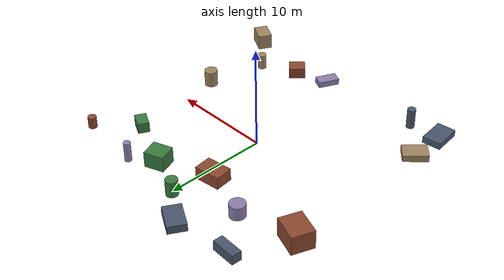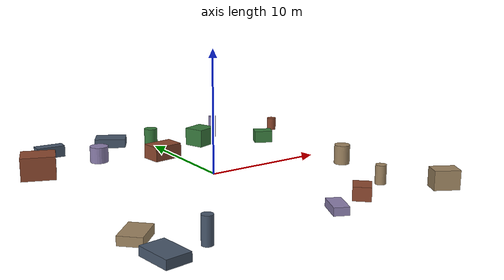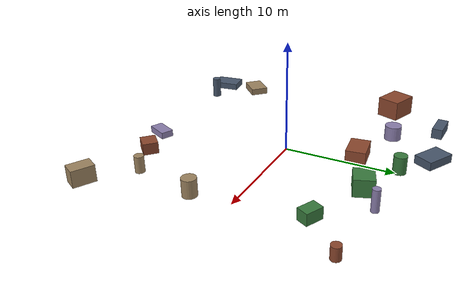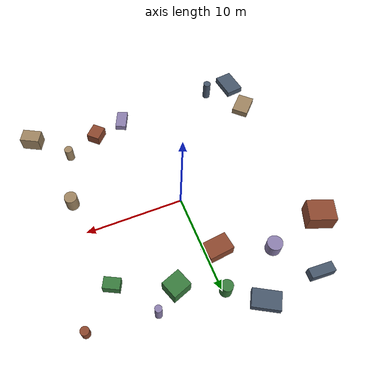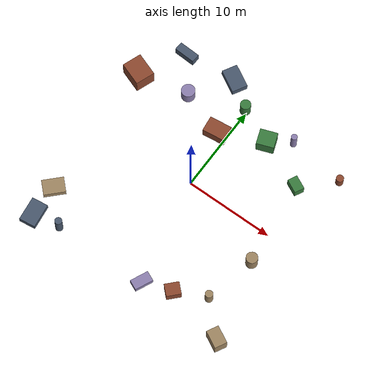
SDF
<sdf version="1.10">
 <world name="robotx_task1_uav_view">
  <gravity>0 0 -9.81</gravity>
  <physics name="physics" type="ode">
   <max_step_size>0.002</max_step_size>
   <real_time_factor>1.0</real_time_factor>
  </physics>
  <scene>
   <ambient>0.20 0.20 0.20 1.0</ambient>
   <background>0.58 0.70 0.88 1.0</background>
   <shadows>true</shadows>
   <grid>false</grid>
  </scene>
  <light name="sun" type="directional">
   <pose>0 0 300 0 0 0</pose>
   <diffuse>0.78 0.78 0.78 1.0</diffuse>
   <specular>0.45 0.45 0.45 1.0</specular>
   <direction>0.20 -0.08 -1.0</direction>
   <attenuation>
    <range>2500</range>
    <constant>0.85</constant>
    <linear>0.001</linear>
    <quadratic>0.00005</quadratic>
   </attenuation>
  </light>
  <plugin filename="gz-sim-physics-system" name="gz::sim::systems::Physics"/>
  <plugin filename="gz-sim-user-commands-system" name="gz::sim::systems::UserCommands"/>
  <plugin filename="gz-sim-scene-broadcaster-system" name="gz::sim::systems::SceneBroadcaster"/>
  <plugin filename="gz-sim-sensors-system" name="gz::sim::systems::Sensors">
   <render_engine>ogre2</render_engine>
  </plugin>
  <model name="scene_clutter_box_000">
   <static>true</static>
   <pose>12.482 -12.603 0.780 0 0 -0.487610</pose>
   <link name="link">
    <visual name="v">
     <geometry><box><size>2.008 1.378 1.520</size></box></geometry>
     <material><ambient>0.45 0.38 0.32 1.0</ambient><diffuse>0.62 0.52 0.38 1.0</diffuse></material>
    </visual>
   </link>
  </model>
  <model name="scene_clutter_cyl_001">
   <static>true</static>
   <pose>-8.130 -12.249 1.049 0 0 1.329869</pose>
   <link name="link">
    <visual name="v">
     <geometry><cylinder><radius>0.402</radius><length>1.998</length></cylinder></geometry>
     <material><ambient>0.18 0.22 0.28 1.0</ambient><diffuse>0.28 0.34 0.42 1.0</diffuse></material>
    </visual>
   </link>
  </model>
  <model name="scene_clutter_box_002">
   <static>true</static>
   <pose>5.712 -10.963 0.553 0 0 0.814916</pose>
   <link name="link">
    <visual name="v">
     <geometry><box><size>1.611 1.381 1.065</size></box></geometry>
     <material><ambient>0.35 0.16 0.12 1.0</ambient><diffuse>0.55 0.28 0.18 1.0</diffuse></material>
    </visual>
   </link>
  </model>
  <model name="scene_clutter_cyl_003">
   <static>true</static>
   <pose>-0.276 10.292 0.857 0 0 -2.375255</pose>
   <link name="link">
    <visual name="v">
     <geometry><cylinder><radius>0.583</radius><length>1.614</length></cylinder></geometry>
     <material><ambient>0.12 0.30 0.14 1.0</ambient><diffuse>0.22 0.48 0.24 1.0</diffuse></material>
    </visual>
   </link>
  </model>
  <model name="scene_clutter_cyl_004">
   <static>true</static>
   <pose>6.171 10.119 1.038 0 0 -0.441008</pose>
   <link name="link">
    <visual name="v">
     <geometry><cylinder><radius>0.341</radius><length>1.976</length></cylinder></geometry>
     <material><ambient>0.40 0.35 0.50 1.0</ambient><diffuse>0.55 0.50 0.68 1.0</diffuse></material>
    </visual>
   </link>
  </model>
  <model name="scene_clutter_cyl_005">
   <static>true</static>
   <pose>10.412 -3.511 0.852 0 0 -0.757051</pose>
   <link name="link">
    <visual name="v">
     <geometry><cylinder><radius>0.642</radius><length>1.604</length></cylinder></geometry>
     <material><ambient>0.45 0.38 0.32 1.0</ambient><diffuse>0.62 0.52 0.38 1.0</diffuse></material>
    </visual>
   </link>
  </model>
  <model name="scene_clutter_box_006">
   <static>true</static>
   <pose>-11.228 -12.624 0.349 0 0 -1.440854</pose>
   <link name="link">
    <visual name="v">
     <geometry><box><size>2.731 1.845 0.658</size></box></geometry>
     <material><ambient>0.18 0.22 0.28 1.0</ambient><diffuse>0.28 0.34 0.42 1.0</diffuse></material>
    </visual>
   </link>
  </model>
  <model name="scene_clutter_cyl_007">
   <static>true</static>
   <pose>12.624 9.392 0.619 0 0 -0.344948</pose>
   <link name="link">
    <visual name="v">
     <geometry><cylinder><radius>0.416</radius><length>1.137</length></cylinder></geometry>
     <material><ambient>0.35 0.16 0.12 1.0</ambient><diffuse>0.55 0.28 0.18 1.0</diffuse></material>
    </visual>
   </link>
  </model>
  <model name="scene_clutter_box_008">
   <static>true</static>
   <pose>3.836 8.453 0.802 0 0 0.348647</pose>
   <link name="link">
    <visual name="v">
     <geometry><box><size>1.957 1.783 1.564</size></box></geometry>
     <material><ambient>0.12 0.30 0.14 1.0</ambient><diffuse>0.22 0.48 0.24 1.0</diffuse></material>
    </visual>
   </link>
  </model>
  <model name="scene_clutter_cyl_009">
   <static>true</static>
   <pose>-6.274 8.099 0.723 0 0 2.740725</pose>
   <link name="link">
    <visual name="v">
     <geometry><cylinder><radius>0.762</radius><length>1.345</length></cylinder></geometry>
     <material><ambient>0.40 0.35 0.50 1.0</ambient><diffuse>0.55 0.50 0.68 1.0</diffuse></material>
    </visual>
   </link>
  </model>
  <model name="scene_clutter_cyl_010">
   <static>true</static>
   <pose>9.148 -9.326 0.811 0 0 -2.560060</pose>
   <link name="link">
    <visual name="v">
     <geometry><cylinder><radius>0.427</radius><length>1.523</length></cylinder></geometry>
     <material><ambient>0.45 0.38 0.32 1.0</ambient><diffuse>0.62 0.52 0.38 1.0</diffuse></material>
    </visual>
   </link>
  </model>
  <model name="scene_clutter_box_011">
   <static>true</static>
   <pose>-9.221 11.891 0.499 0 0 -1.622120</pose>
   <link name="link">
    <visual name="v">
     <geometry><box><size>0.974 2.417 0.959</size></box></geometry>
     <material><ambient>0.18 0.22 0.28 1.0</ambient><diffuse>0.28 0.34 0.42 1.0</diffuse></material>
    </visual>
   </link>
  </model>
  <model name="scene_clutter_box_012">
   <static>true</static>
   <pose>-11.958 6.798 0.953 0 0 -0.350087</pose>
   <link name="link">
    <visual name="v">
     <geometry><box><size>2.698 2.205 1.865</size></box></geometry>
     <material><ambient>0.35 0.16 0.12 1.0</ambient><diffuse>0.55 0.28 0.18 1.0</diffuse></material>
    </visual>
   </link>
  </model>
  <model name="scene_clutter_box_013">
   <static>true</static>
   <pose>9.225 6.148 0.550 0 0 -0.461757</pose>
   <link name="link">
    <visual name="v">
     <geometry><box><size>1.606 1.116 1.060</size></box></geometry>
     <material><ambient>0.12 0.30 0.14 1.0</ambient><diffuse>0.22 0.48 0.24 1.0</diffuse></material>
    </visual>
   </link>
  </model>
  <model name="scene_clutter_box_014">
   <static>true</static>
   <pose>2.460 -11.993 0.325 0 0 2.718652</pose>
   <link name="link">
    <visual name="v">
     <geometry><box><size>1.149 2.079 0.610</size></box></geometry>
     <material><ambient>0.40 0.35 0.50 1.0</ambient><diffuse>0.55 0.50 0.68 1.0</diffuse></material>
    </visual>
   </link>
  </model>
  <model name="scene_clutter_box_015">
   <static>true</static>
   <pose>-11.345 -9.026 0.352 0 0 -2.342275</pose>
   <link name="link">
    <visual name="v">
     <geometry><box><size>2.416 1.718 0.663</size></box></geometry>
     <material><ambient>0.45 0.38 0.32 1.0</ambient><diffuse>0.62 0.52 0.38 1.0</diffuse></material>
    </visual>
   </link>
  </model>
  <model name="scene_clutter_box_016">
   <static>true</static>
   <pose>-3.254 12.464 0.409 0 0 -0.512995</pose>
   <link name="link">
    <visual name="v">
     <geometry><box><size>2.712 1.777 0.779</size></box></geometry>
     <material><ambient>0.18 0.22 0.28 1.0</ambient><diffuse>0.28 0.34 0.42 1.0</diffuse></material>
    </visual>
   </link>
  </model>
  <model name="scene_clutter_box_017">
   <static>true</static>
   <pose>-1.175 6.352 0.635 0 0 -3.017861</pose>
   <link name="link">
    <visual name="v">
     <geometry><box><size>2.559 1.769 1.229</size></box></geometry>
     <material><ambient>0.35 0.16 0.12 1.0</ambient><diffuse>0.55 0.28 0.18 1.0</diffuse></material>
    </visual>
   </link>
  </model>
  <model name="uav_dataset_camera">
   <static>false</static>
   <pose>0 0 26 0 0 0</pose>
   <plugin filename="librobotx_overhead_motion_plugin.dylib" name="robotx::OverheadMotionPlugin">
    <radius_x_m>10.72763</radius_x_m>
    <radius_y_m>10.13813</radius_y_m>
    <angular_speed_rad_s>0.068171</angular_speed_rad_s>
    <phase_rad>4.402742</phase_rad>
    <z_wobble_m>0.08353</z_wobble_m>
    <z_wobble_hz>0.04622</z_wobble_hz>
    <z_wobble_phase_rad>6.045409</z_wobble_phase_rad>
   </plugin>
   <link name="camera_link">
    <gravity>false</gravity>
    <sensor name="top_down_rgb" type="camera">
     <always_on>true</always_on>
     <update_rate>20</update_rate>
     <pose>0 0 0 0 1.57079632679 0</pose>
     <camera>
      <horizontal_fov>1.05</horizontal_fov>
      <image><width>1920</width><height>1080</height><format>R8G8B8</format></image>
      <clip><near>0.2</near><far>600</far></clip>
     </camera>
     <topic>/robotx/uav/camera/image_raw</topic>
     <visualize>true</visualize>
    </sensor>
   </link>
  </model>
 </world>
</sdf>
